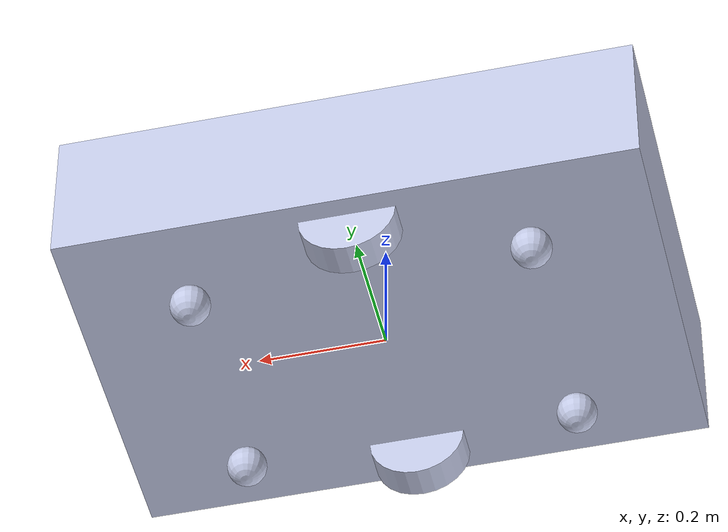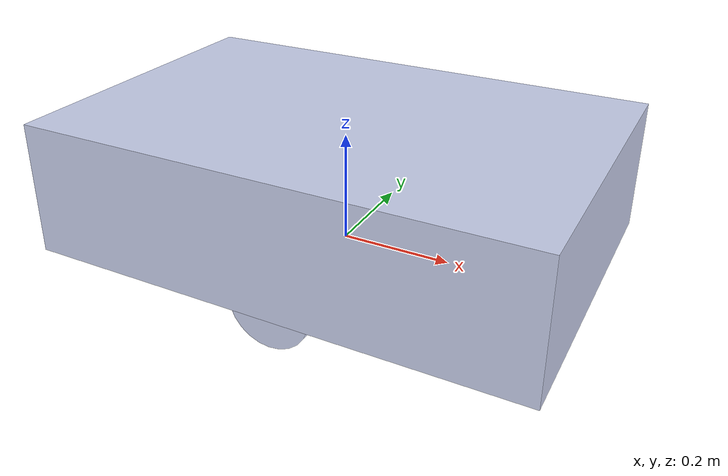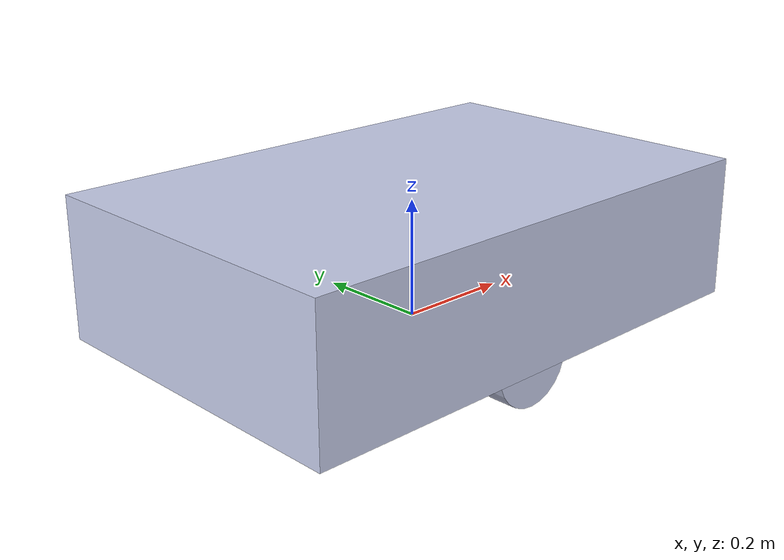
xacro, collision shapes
<?xml version="1.0"?>
<robot xmlns:xacro="http://www.ros.org/wiki/xacro"  name="robot">

    <xacro:arg name="use_ros2_control" default="true"/>
    <xacro:arg name="sim_mode" default="true"/>

    <xacro:include filename="robot_kmutnb.xacro" />

    <xacro:if value="$(arg use_ros2_control)">
        <xacro:include filename="ros2_control2.xacro" />
    </xacro:if>
    <xacro:unless value="$(arg use_ros2_control)">
        <xacro:include filename="gazebo_control.xacro" />
    </xacro:unless>
    <xacro:include filename="lidar2.xacro" />

</robot>

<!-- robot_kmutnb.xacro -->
<robot name="agv_with_casters" xmlns:xacro="http://www.ros.org/wiki/xacro">

  <!-- ================= inertia macro ================= -->
  <xacro:macro name="inertial_cylinder" params="mass length radius">
    <inertial>
      <mass value="${mass}" />
      <inertia
        ixx="${(1/12) * mass * (3*radius*radius + length*length)}"
        ixy="0.0" ixz="0.0"
        iyy="${(1/12) * mass * (3*radius*radius + length*length)}"
        iyz="0.0"
        izz="${(1/2) * mass * (radius*radius)}" />
    </inertial>
  </xacro:macro>

  <!-- ================= materials ================= -->
<material name="amr_blue">
  <color rgba="0.792156862745098 0.819607843137255 0.933333333333333 1"/>
</material>

  <!-- ================= base_link ================= -->
  <link name="base_link"/>

  <!-- ================= chassis ================= -->
  <joint name="base_to_chassis" type="fixed">
    <parent link="base_link"/>
    <child link="chassis_link"/>
  </joint>

  <link name="chassis_link">

    <visual>
      <geometry>
        <mesh filename="package://robot_kmutnb/meshes/base_link.STL"/>
      </geometry>
      <material name="amr_blue"/>
    </visual>

    <collision>
      <geometry><box size="0.900 0.590 0.24"/></geometry>
      <origin xyz="0 0 0.12"/>
    </collision>
    <inertial>
      <mass value="20.0"/>
      <origin xyz="0 0 0.12"/>
      <inertia
        ixx="1.2"
        ixy="0.0" ixz="0.0"
        iyy="2.0"
        iyz="0.0"
        izz="2.5"/>
    </inertial>

  </link>

  <gazebo reference="chassis_link">
    <visual>
      <material>
        <diffuse>0.2 0.2 0.2 1</diffuse> <specular>0.2 0.2 0.2 1</specular>
      </material>
    </visual>
  </gazebo>

  <!-- ================= caster macro ================= -->
  <xacro:macro name="caster" params="name mesh_file x y">

    <link name="${name}_link">
      <visual>
        <origin xyz="0 0 0" rpy="1.5708 0 3.1415926535897931"/>
        <geometry>
          <mesh filename="package://robot_kmutnb/meshes/${mesh_file}"/>
        </geometry>
        <material name="amr_blue"/>
      </visual>

      <collision>
        <origin xyz="0 0 -0.0435" rpy="0 0 0"/>
        <geometry><sphere radius="0.0315"/></geometry>
      </collision>

      <inertial>
        <mass value="0.3"/>
        <inertia
          ixx="0.0001"
          ixy="0.0" ixz="0.0"
          iyy="0.0001"
          iyz="0.0"
          izz="0.0001"/>
      </inertial>
    </link>

    <joint name="${name}_joint" type="fixed">
      <parent link="chassis_link"/>
      <child link="${name}_link"/>
      <origin xyz="${x} ${y} 0"/>
    </joint>

    <gazebo reference="${name}_link">
      <visual>
        <material>
          <diffuse>1.0 0.0 0.0 1</diffuse> <specular>0.5 0.5 0.5 1</specular>
        </material>
      </visual>
      <mu1>0.1</mu1> <mu2>0.1</mu2>
    </gazebo>

  </xacro:macro>

  <!-- ================= casters ================= -->
  <xacro:caster name="caster_fr" mesh_file="CFR_Link.STL" x="0.26248"  y="-0.17556"/>
  <xacro:caster name="caster_fl" mesh_file="CFL_Link.STL" x="0.26248"  y="0.17556"/>
  <xacro:caster name="caster_rr" mesh_file="CBR_Link.STL" x="-0.26248" y="-0.17556"/>
  <xacro:caster name="caster_rl" mesh_file="CBL_Link.STL" x="-0.26248" y="0.17556"/>

  <!-- ================= right wheel ================= -->
  <link name="right_wheel">
    <visual>
      <geometry>
        <mesh filename="package://robot_kmutnb/meshes/R_Link.STL"/>
      </geometry>
      <material name="amr_blue"/>
    </visual>

<collision>
  <origin xyz="0 0 0" rpy="1.5708 0 0"/>
  <geometry>
    <cylinder radius="0.075" length="0.05"/>
  </geometry>
</collision>

    <xacro:inertial_cylinder mass="0.5" length="0.05" radius="0.075"/>
  </link>

<joint name="right_wheel_joint" type="continuous">
  <parent link="chassis_link"/>
  <child link="right_wheel"/>
  <origin xyz="0 -0.2397 0"/>
  <axis xyz="0 1 0"/>
</joint>

  <gazebo reference="right_wheel">
    <visual>
      <material>
        <diffuse>0.0 0.0 0.0 1</diffuse> <specular>0.1 0.1 0.1 1</specular>
      </material>
    </visual>
  </gazebo>

  <!-- ================= left wheel ================= -->
  <link name="left_wheel">
    <visual>
      <geometry>
        <mesh filename="package://robot_kmutnb/meshes/L_Link.STL"/>
      </geometry>
      <material name="amr_blue"/>
    </visual>

<collision>
  <origin xyz="0 0 0" rpy="1.5708 0 0"/>
  <geometry>
    <cylinder radius="0.075" length="0.05"/>
  </geometry>
</collision>

    <xacro:inertial_cylinder mass="0.5" length="0.05" radius="0.075"/>
  </link>

<joint name="left_wheel_joint" type="continuous">
  <parent link="chassis_link"/>
  <child link="left_wheel"/>
  <origin xyz="0 0.2397 0"/>
  <axis xyz="0 1 0"/>
</joint>

  <gazebo reference="left_wheel">
    <visual>
      <material>
        <diffuse>0.0 0.0 0.0 1</diffuse> <specular>0.1 0.1 0.1 1</specular>
      </material>
    </visual>
  </gazebo>

  <!-- ================= ros2_control ================= -->
  <ros2_control name="GazeboSystem" type="system">
    <hardware>
      <plugin>gz_ros2_control/GazeboSimSystem</plugin>
    </hardware>

    <joint name="left_wheel_joint">
      <command_interface name="velocity"/>
      <state_interface name="velocity"/>
      <state_interface name="position"/>
    </joint>

    <joint name="right_wheel_joint">
      <command_interface name="velocity"/>
      <state_interface name="velocity"/>
      <state_interface name="position"/>
    </joint>
  </ros2_control>

  <gazebo>
    <plugin filename="libgazebo_ros2_control.so"
            name="gazebo_ros2_control"/>
  </gazebo>

</robot>

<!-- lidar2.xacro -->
<robot xmlns:xacro="http://www.ros.org/wiki/xacro">

    <material name="orange">
        <color rgba="1.0 0.5 0.0 1.0"/>
    </material>

    <joint name="laser_joint" type="fixed">
     <parent link="chassis_link"/>
     <child link="laser_frame"/>
     <origin xyz="0.29 0 0.11" rpy="0 0 0"/>
    </joint>

    <link name="laser_frame">
      <visual>
       <geometry>
        <mesh filename="package://robot_kmutnb/meshes/hokuyo.dae"/>
       </geometry>
       <material name="orange"/>
      </visual>
    </link>

    <gazebo reference="laser_frame">
        <material>Gazebo/Orange</material>
        <sensor name="laser" type="gpu_lidar">
            <pose> 0 0 0 0 0 0 </pose>
            <visualize>true</visualize>
            <update_rate>10</update_rate>
            <lidar>
                <scan>
                    <horizontal>
                        <samples>180</samples>
                        <min_angle>-1.57</min_angle>
                        <max_angle>1.57</max_angle>
                    </horizontal>
                </scan>
                <range>
                    <min>0.3</min>
                    <max>20</max>
                </range>
            </lidar>
                <topic>scan</topic>
                <gz_frame_id>laser_frame</gz_frame_id>
        </sensor>
    </gazebo>
</robot>
